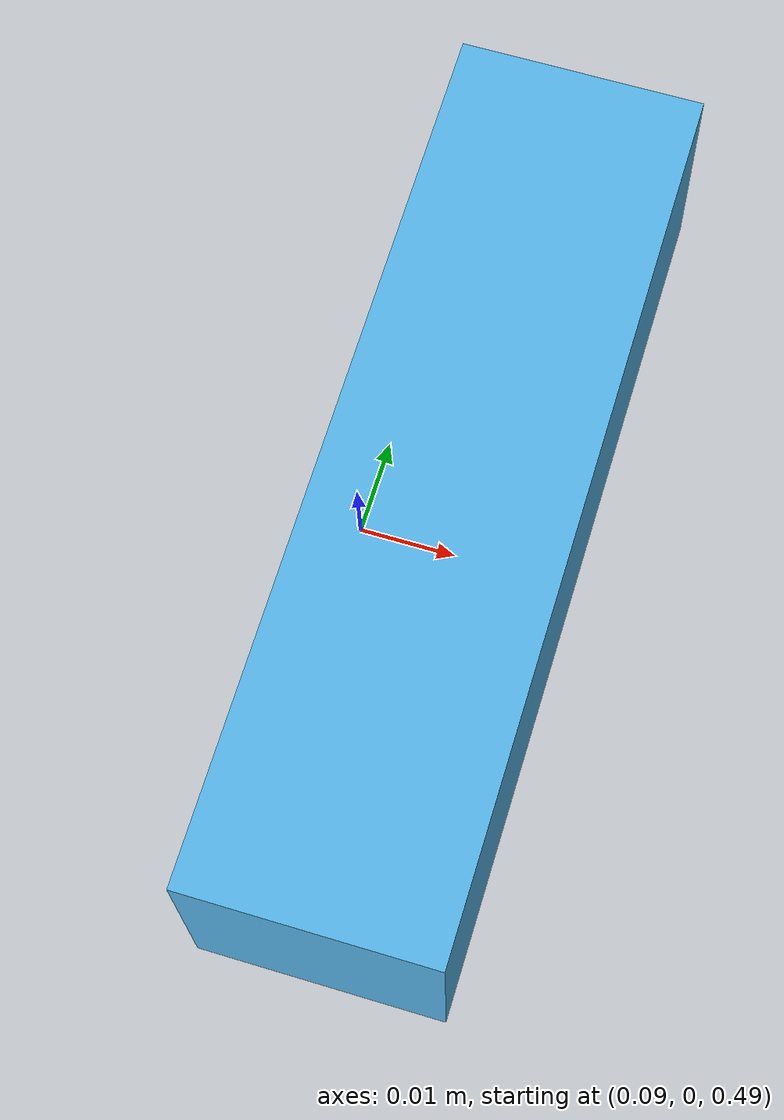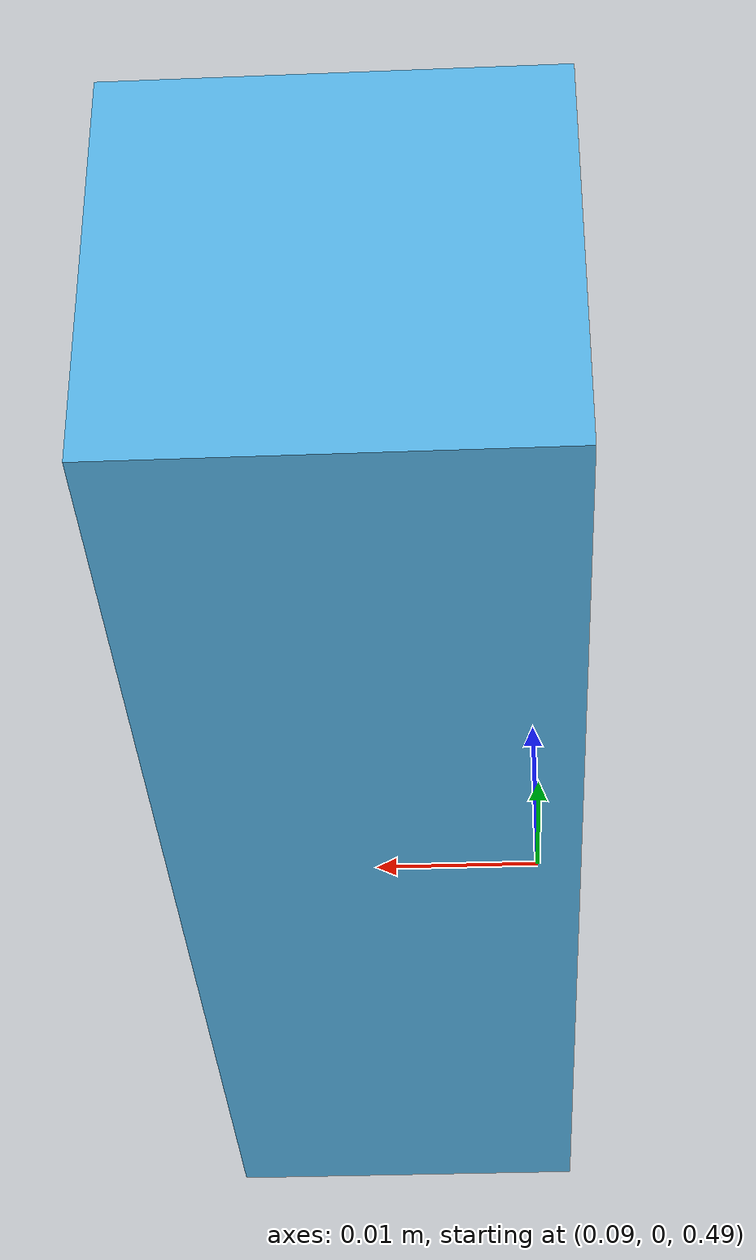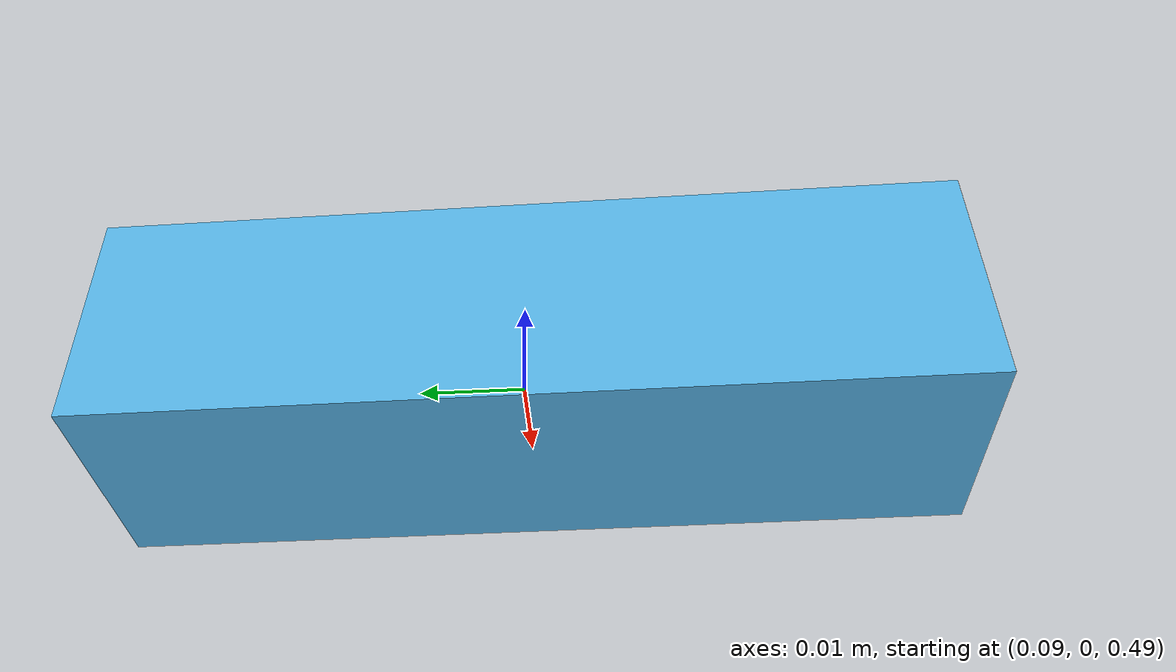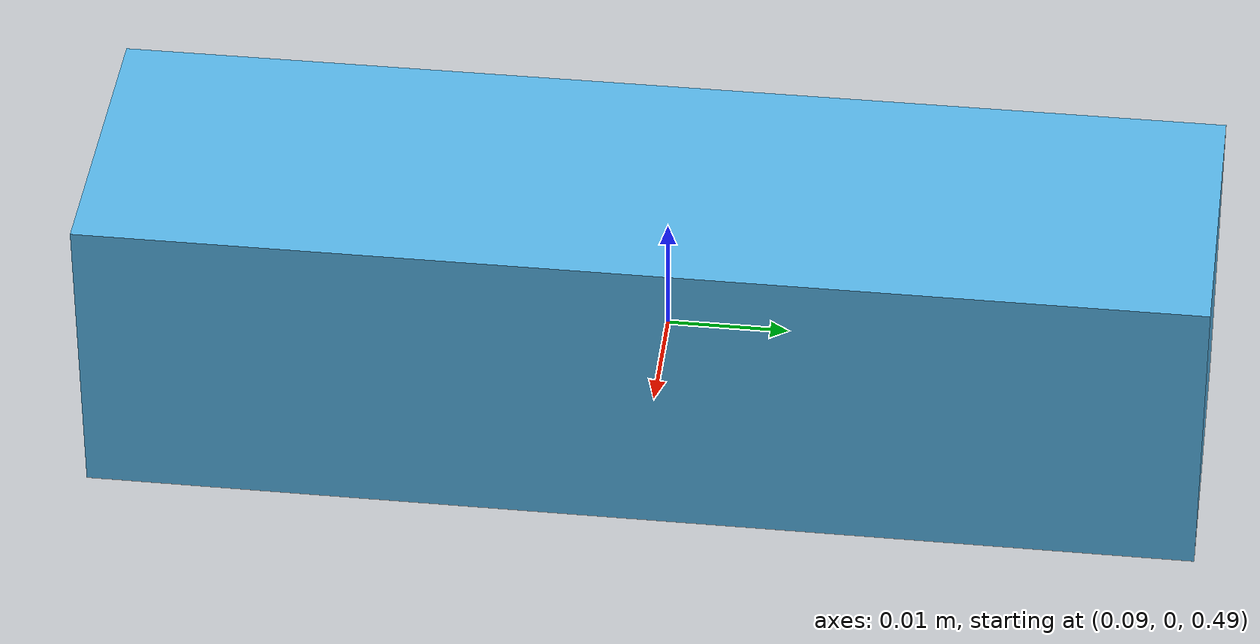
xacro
<?xml version="1.0"?>
<!-- Placeholder: replace with official Unitree G1 URDF -->
<!-- Download from: https://github.com/unitreerobotics/unitree_ros -->
<robot name="g1" xmlns:xacro="http://www.ros.org/wiki/xacro">

  <link name="base_link"/>

  <link name="camera_link">
    <visual>
      <geometry><box size="0.025 0.09 0.025"/></geometry>
    </visual>
  </link>

  <joint name="camera_joint" type="fixed">
    <parent link="base_link"/>
    <child link="camera_link"/>
    <!-- Adjust xyz/rpy to match actual camera mount on G1 -->
    <origin xyz="0.1 0.0 0.5" rpy="0 0 0"/>
  </joint>

  <link name="camera_depth_frame"/>
  <joint name="camera_depth_joint" type="fixed">
    <parent link="camera_link"/>
    <child link="camera_depth_frame"/>
    <origin xyz="0 0 0" rpy="${-pi/2} 0 ${-pi/2}"/>
  </joint>

</robot>
